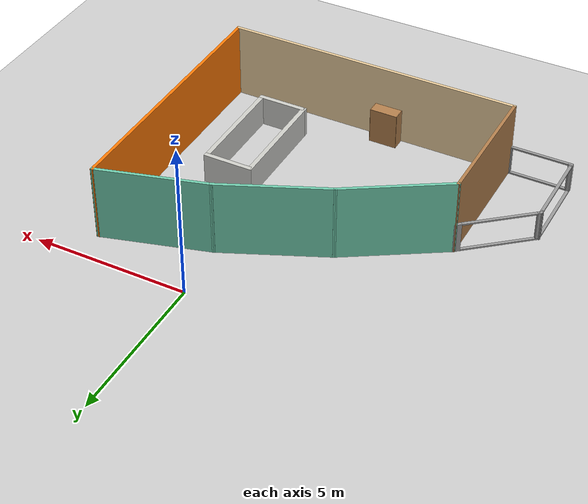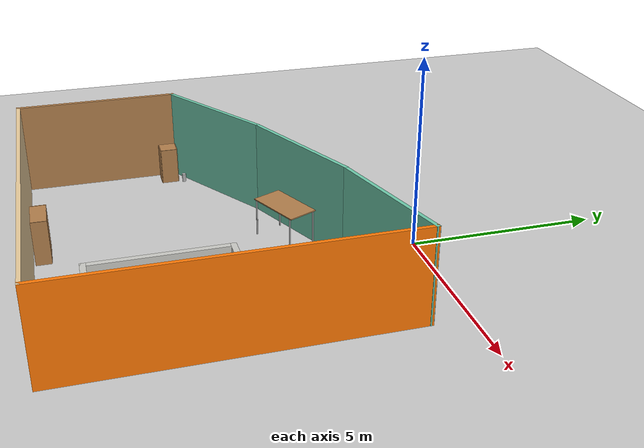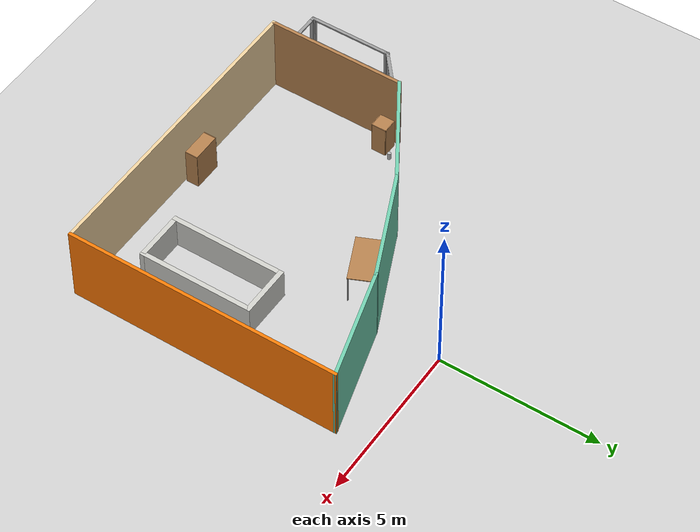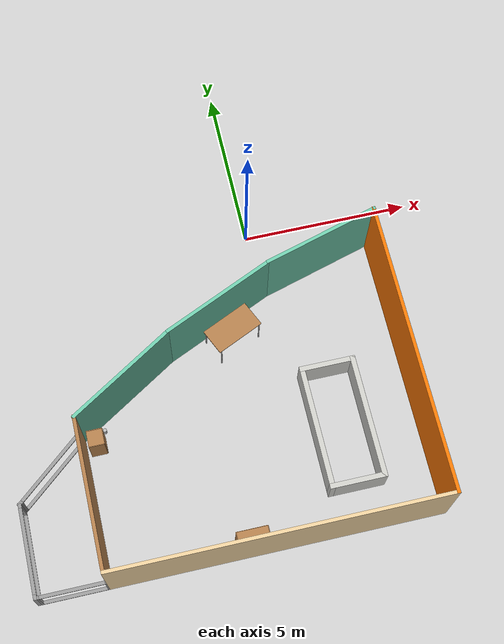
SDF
<sdf version="1.6">
 <world name="default">
  <light name="sun" type="directional">
   <pose>0 0 10 0 -0 0</pose>
   <diffuse>0.8 0.8 0.8 1</diffuse>
   <specular>0.2 0.2 0.2 1</specular>
   <attenuation>
    <range>1000</range>
    <constant>0.9</constant>
    <linear>0.01</linear>
    <quadratic>0.001</quadratic>
   </attenuation>
   <direction>-0.5 0.1 -0.9</direction>
  </light>
  <model name="ground_plane">
   <static>1</static>
   <link name="link">
    <collision name="collision">
     <geometry><plane><normal>0 0 1</normal><size>100 100</size></plane></geometry>
     <surface>
      <contact><collide_bitmask>65535</collide_bitmask></contact>
      <friction><ode><mu>100</mu><mu2>50</mu2></ode></friction>
     </surface>
    </collision>
    <visual name="visual">
     <cast_shadows>0</cast_shadows>
     <geometry><plane><normal>0 0 1</normal><size>100 100</size></plane></geometry>
     <material>
      <script><uri>file://media/materials/scripts/gazebo.material</uri><name>Gazebo/Grey</name></script>
     </material>
    </visual>
   </link>
  </model>
  <gravity>0 0 -9.8</gravity>
  <magnetic_field>6e-06 2.3e-05 -4.2e-05</magnetic_field>
  <atmosphere type="adiabatic"/>
  <physics name="default_physics" default="0" type="ode">
   <max_step_size>0.001</max_step_size>
   <real_time_factor>1</real_time_factor>
   <real_time_update_rate>1000</real_time_update_rate>
  </physics>
  <scene><ambient>0.4 0.4 0.4 1</ambient><background>0.7 0.7 0.7 1</background><shadows>1</shadows></scene>
  <spherical_coordinates>
   <surface_model>EARTH_WGS84</surface_model>
   <latitude_deg>0</latitude_deg>
   <longitude_deg>0</longitude_deg>
   <elevation>0</elevation>
   <heading_deg>0</heading_deg>
  </spherical_coordinates>
  <model name="enso_simplified2">
   <pose>-2.23432 -5.23909 0 0 -0 0</pose>
   <link name="Wall_11">
    <collision name="Wall_11_Collision">
     <geometry><box><size>3.65 0.15 1</size></box></geometry>
     <pose>0 0 0.5 0 -0 0</pose>
    </collision>
    <visual name="Wall_11_Visual">
     <pose>0 0 0.5 0 -0 0</pose>
     <geometry><box><size>3.65 0.15 1</size></box></geometry>
     <material>
      <script><uri>file://media/materials/scripts/gazebo.material</uri><name>Gazebo/CeilingTiled</name></script>
      <ambient>1 1 1 1</ambient>
     </material>
     <meta><layer>0</layer></meta>
    </visual>
    <pose>4.26431 -1.31091 0 0 0 -1.5708</pose>
   </link>
   <link name="Wall_12">
    <collision name="Wall_12_Collision">
     <geometry><box><size>1.65 0.15 1</size></box></geometry>
     <pose>0 0 0.5 0 -0 0</pose>
    </collision>
    <visual name="Wall_12_Visual">
     <pose>0 0 0.5 0 -0 0</pose>
     <geometry><box><size>1.65 0.15 1</size></box></geometry>
     <material>
      <script><uri>file://media/materials/scripts/gazebo.material</uri><name>Gazebo/CeilingTiled</name></script>
      <ambient>1 1 1 1</ambient>
     </material>
     <meta><layer>0</layer></meta>
    </visual>
    <pose>3.51431 -3.06091 0 0 -0 3.14159</pose>
   </link>
   <link name="Wall_13">
    <collision name="Wall_13_Collision">
     <geometry><box><size>3.65 0.15 1</size></box></geometry>
     <pose>0 0 0.5 0 -0 0</pose>
    </collision>
    <visual name="Wall_13_Visual">
     <pose>0 0 0.5 0 -0 0</pose>
     <geometry><box><size>3.65 0.15 1</size></box></geometry>
     <material>
      <script><uri>file://media/materials/scripts/gazebo.material</uri><name>Gazebo/CeilingTiled</name></script>
      <ambient>1 1 1 1</ambient>
     </material>
     <meta><layer>0</layer></meta>
    </visual>
    <pose>2.76431 -1.31091 0 0 -0 1.5708</pose>
   </link>
   <link name="Wall_14">
    <collision name="Wall_14_Collision">
     <geometry><box><size>1.65 0.15 1</size></box></geometry>
     <pose>0 0 0.5 0 -0 0</pose>
    </collision>
    <visual name="Wall_14_Visual">
     <pose>0 0 0.5 0 -0 0</pose>
     <geometry><box><size>1.65 0.15 1</size></box></geometry>
     <material>
      <script><uri>file://media/materials/scripts/gazebo.material</uri><name>Gazebo/CeilingTiled</name></script>
      <ambient>1 1 1 1</ambient>
     </material>
     <meta><layer>0</layer></meta>
    </visual>
    <pose>3.51431 0.439094 0 0 -0 0</pose>
   </link>
   <link name="Wall_16">
    <collision name="Wall_16_Collision">
     <geometry><box><size>4.37 0.1 2.5</size></box></geometry>
     <pose>0 0 1.25 0 -0 0</pose>
    </collision>
    <visual name="Wall_16_Visual">
     <pose>0 0 1.25 0 -0 0</pose>
     <geometry><box><size>4.37 0.1 2.5</size></box></geometry>
     <material>
      <script><uri>file://media/materials/scripts/gazebo.material</uri><name>Gazebo/Wood</name></script>
      <ambient>1 1 1 1</ambient>
     </material>
     <meta><layer>0</layer></meta>
    </visual>
    <pose>-3.76568 -2.12591 0 0 0 -1.5708</pose>
   </link>
   <link name="Wall_2">
    <collision name="Wall_2_Collision">
     <geometry><box><size>3.59445 0.1 2.5</size></box></geometry>
     <pose>0 0 1.25 0 -0 0</pose>
    </collision>
    <visual name="Wall_2_Visual">
     <pose>0 0 1.25 0 -0 0</pose>
     <geometry><box><size>3.59445 0.1 2.5</size></box></geometry>
     <material>
      <script><uri>file://media/materials/scripts/gazebo.material</uri><name>Gazebo/Grey</name></script>
      <ambient>0.435294 0.796078 0.67451 1</ambient>
     </material>
     <meta><layer>0</layer></meta>
    </visual>
    <pose>4.08432 3.76909 0 0 0 -2.86329</pose>
   </link>
   <link name="Wall_3">
    <collision name="Wall_3_Collision">
     <geometry><box><size>3.60498 0.1 2.5</size></box></geometry>
     <pose>0 0 1.25 0 -0 0</pose>
    </collision>
    <visual name="Wall_3_Visual">
     <pose>0 0 1.25 0 -0 0</pose>
     <geometry><box><size>3.60498 0.1 2.5</size></box></geometry>
     <material>
      <script><uri>file://media/materials/scripts/gazebo.material</uri><name>Gazebo/Grey</name></script>
      <ambient>0.435294 0.796078 0.67451 1</ambient>
     </material>
     <meta><layer>0</layer></meta>
    </visual>
    <pose>0.804315 2.57409 0 0 0 -2.72134</pose>
   </link>
   <link name="Wall_4">
    <collision name="Wall_4_Collision">
     <geometry><box><size>3.59906 0.1 2.5</size></box></geometry>
     <pose>0 0 1.25 0 -0 0</pose>
    </collision>
    <visual name="Wall_4_Visual">
     <pose>0 0 1.25 0 -0 0</pose>
     <geometry><box><size>3.59906 0.1 2.5</size></box></geometry>
     <material>
      <script><uri>file://media/materials/scripts/gazebo.material</uri><name>Gazebo/Grey</name></script>
      <ambient>0.435294 0.796078 0.67451 1</ambient>
     </material>
     <meta><layer>0</layer></meta>
    </visual>
    <pose>-2.28069 0.934094 0 0 0 -2.58451</pose>
   </link>
   <link name="Wall_5">
    <pose>-4.76068 -0.825906 0 0 0 -2.4434</pose>
    <visual name="Wall_5_Visual_0">
     <pose>-1.22988 0 0.5 0 -0 0</pose>
     <geometry><box><size>0.238128 0.1 1</size></box></geometry>
     <material>
      <script><uri>file://media/materials/scripts/gazebo.material</uri><name>Gazebo/Grey</name></script>
      <ambient>1 1 1 1</ambient>
     </material>
     <meta><layer>0</layer></meta>
    </visual>
    <collision name="Wall_5_Collision_0">
     <geometry><box><size>0.238128 0.1 1</size></box></geometry>
     <pose>-1.22988 0 0.5 0 -0 0</pose>
    </collision>
    <visual name="Wall_5_Visual_1">
     <pose>0.119064 0 0.025 0 -0 0</pose>
     <geometry><box><size>2.45976 0.1 0.05</size></box></geometry>
     <material>
      <script><uri>file://media/materials/scripts/gazebo.material</uri><name>Gazebo/Grey</name></script>
      <ambient>1 1 1 1</ambient>
     </material>
     <meta><layer>0</layer></meta>
    </visual>
    <collision name="Wall_5_Collision_1">
     <geometry><box><size>2.45976 0.1 0.05</size></box></geometry>
     <pose>0.119064 0 0.025 0 -0 0</pose>
    </collision>
    <visual name="Wall_5_Visual_2">
     <pose>1.26906 0 0.525 0 -0 0</pose>
     <geometry><box><size>0.159756 0.1 0.95</size></box></geometry>
     <material>
      <script><uri>file://media/materials/scripts/gazebo.material</uri><name>Gazebo/Grey</name></script>
      <ambient>1 1 1 1</ambient>
     </material>
     <meta><layer>0</layer></meta>
    </visual>
    <collision name="Wall_5_Collision_2">
     <geometry><box><size>0.159756 0.1 0.95</size></box></geometry>
     <pose>1.26906 0 0.525 0 -0 0</pose>
    </collision>
    <visual name="Wall_5_Visual_3">
     <pose>0.039186 0 0.975 0 -0 0</pose>
     <geometry><box><size>2.3 0.1 0.05</size></box></geometry>
     <material>
      <script><uri>file://media/materials/scripts/gazebo.material</uri><name>Gazebo/Grey</name></script>
      <ambient>1 1 1 1</ambient>
     </material>
     <meta><layer>0</layer></meta>
    </visual>
    <collision name="Wall_5_Collision_3">
     <geometry><box><size>2.3 0.1 0.05</size></box></geometry>
     <pose>0.039186 0 0.975 0 -0 0</pose>
    </collision>
   </link>
   <link name="Wall_6">
    <pose>-5.75568 -2.96091 0 0 0 -1.5708</pose>
    <visual name="Wall_6_Visual_0">
     <pose>-1.275 0 0.5 0 -0 0</pose>
     <geometry><box><size>0.15 0.1 1</size></box></geometry>
     <material>
      <script><uri>file://media/materials/scripts/gazebo.material</uri><name>Gazebo/Grey</name></script>
      <ambient>1 1 1 1</ambient>
     </material>
     <meta><layer>0</layer></meta>
    </visual>
    <collision name="Wall_6_Collision_0">
     <geometry><box><size>0.15 0.1 1</size></box></geometry>
     <pose>-1.275 0 0.5 0 -0 0</pose>
    </collision>
    <visual name="Wall_6_Visual_1">
     <pose>0.075 0 0.025 0 -0 0</pose>
     <geometry><box><size>2.55 0.1 0.05</size></box></geometry>
     <material>
      <script><uri>file://media/materials/scripts/gazebo.material</uri><name>Gazebo/Grey</name></script>
      <ambient>1 1 1 1</ambient>
     </material>
     <meta><layer>0</layer></meta>
    </visual>
    <collision name="Wall_6_Collision_1">
     <geometry><box><size>2.55 0.1 0.05</size></box></geometry>
     <pose>0.075 0 0.025 0 -0 0</pose>
    </collision>
    <visual name="Wall_6_Visual_2">
     <pose>1.275 0 0.525 0 -0 0</pose>
     <geometry><box><size>0.15 0.1 0.95</size></box></geometry>
     <material>
      <script><uri>file://media/materials/scripts/gazebo.material</uri><name>Gazebo/Grey</name></script>
      <ambient>1 1 1 1</ambient>
     </material>
     <meta><layer>0</layer></meta>
    </visual>
    <collision name="Wall_6_Collision_2">
     <geometry><box><size>0.15 0.1 0.95</size></box></geometry>
     <pose>1.275 0 0.525 0 -0 0</pose>
    </collision>
    <visual name="Wall_6_Visual_3">
     <pose>-0 0 0.975 0 -0 0</pose>
     <geometry><box><size>2.4 0.1 0.05</size></box></geometry>
     <material>
      <script><uri>file://media/materials/scripts/gazebo.material</uri><name>Gazebo/Grey</name></script>
      <ambient>1 1 1 1</ambient>
     </material>
     <meta><layer>0</layer></meta>
    </visual>
    <collision name="Wall_6_Collision_3">
     <geometry><box><size>2.4 0.1 0.05</size></box></geometry>
     <pose>-0 0 0.975 0 -0 0</pose>
    </collision>
   </link>
   <link name="Wall_7">
    <pose>-4.76068 -4.26091 0 0 -0 0</pose>
    <visual name="Wall_7_Visual_0">
     <pose>-0.97 0 0.5 0 -0 0</pose>
     <geometry><box><size>0.15 0.1 1</size></box></geometry>
     <material>
      <script><uri>file://media/materials/scripts/gazebo.material</uri><name>Gazebo/Grey</name></script>
      <ambient>1 1 1 1</ambient>
     </material>
     <meta><layer>0</layer></meta>
    </visual>
    <collision name="Wall_7_Collision_0">
     <geometry><box><size>0.15 0.1 1</size></box></geometry>
     <pose>-0.97 0 0.5 0 -0 0</pose>
    </collision>
    <visual name="Wall_7_Visual_1">
     <pose>0.075 0 0.025 0 -0 0</pose>
     <geometry><box><size>1.94 0.1 0.05</size></box></geometry>
     <material>
      <script><uri>file://media/materials/scripts/gazebo.material</uri><name>Gazebo/Grey</name></script>
      <ambient>1 1 1 1</ambient>
     </material>
     <meta><layer>0</layer></meta>
    </visual>
    <collision name="Wall_7_Collision_1">
     <geometry><box><size>1.94 0.1 0.05</size></box></geometry>
     <pose>0.075 0 0.025 0 -0 0</pose>
    </collision>
    <visual name="Wall_7_Visual_2">
     <pose>0.975 0 0.525 0 -0 0</pose>
     <geometry><box><size>0.14 0.1 0.95</size></box></geometry>
     <material>
      <script><uri>file://media/materials/scripts/gazebo.material</uri><name>Gazebo/Grey</name></script>
      <ambient>1 1 1 1</ambient>
     </material>
     <meta><layer>0</layer></meta>
    </visual>
    <collision name="Wall_7_Collision_2">
     <geometry><box><size>0.14 0.1 0.95</size></box></geometry>
     <pose>0.975 0 0.525 0 -0 0</pose>
    </collision>
    <visual name="Wall_7_Visual_3">
     <pose>0.005 0 0.975 0 -0 0</pose>
     <geometry><box><size>1.8 0.1 0.05</size></box></geometry>
     <material>
      <script><uri>file://media/materials/scripts/gazebo.material</uri><name>Gazebo/Grey</name></script>
      <ambient>1 1 1 1</ambient>
     </material>
     <meta><layer>0</layer></meta>
    </visual>
    <collision name="Wall_7_Collision_3">
     <geometry><box><size>1.8 0.1 0.05</size></box></geometry>
     <pose>0.005 0 0.975 0 -0 0</pose>
    </collision>
   </link>
   <link name="Wall_8">
    <collision name="Wall_8_Collision">
     <geometry><box><size>9.63 0.1 2.5</size></box></geometry>
     <pose>0 0 1.25 0 -0 0</pose>
    </collision>
    <visual name="Wall_8_Visual">
     <pose>0 0 1.25 0 -0 0</pose>
     <geometry><box><size>9.63 0.1 2.5</size></box></geometry>
     <material>
      <script><uri>file://media/materials/scripts/gazebo.material</uri><name>Gazebo/Grey</name></script>
      <ambient>0.921569 0.807843 0.615686 1</ambient>
     </material>
     <meta><layer>0</layer></meta>
    </visual>
    <pose>0.999315 -4.26091 0 0 -0 0</pose>
   </link>
   <link name="Wall_9">
    <collision name="Wall_9_Collision">
     <geometry><box><size>8.61 0.1 2.5</size></box></geometry>
     <pose>0 0 1.25 0 -0 0</pose>
    </collision>
    <visual name="Wall_9_Visual">
     <pose>0 0 1.25 0 -0 0</pose>
     <geometry><box><size>8.61 0.1 2.5</size></box></geometry>
     <material>
      <script><uri>file://media/materials/scripts/gazebo.material</uri><name>Gazebo/Grey</name></script>
      <ambient>0.996078 0.47451 0.0196078 1</ambient>
     </material>
     <meta><layer>0</layer></meta>
    </visual>
    <pose>5.76431 -0.005906 0 0 -0 1.5708</pose>
   </link>
   <static>1</static>
  </model>
  <model name="cabinet">
   <static>1</static>
   <link name="cabinet_bottom_plate">
    <inertial>
     <pose>0 0 -1 0 -0 0</pose>
     <inertia><ixx>2.05</ixx><ixy>0</ixy><ixz>0</ixz><iyy>2.05</iyy><iyz>0</iyz><izz>2.05</izz></inertia>
     <mass>25</mass>
    </inertial>
    <collision name="cabinet_bottom_plate_geom">
     <pose>0 0 0.01 0 -0 0</pose>
     <geometry><box><size>0.45 0.45 0.02</size></box></geometry>
    </collision>
    <visual name="cabinet_bottom_plate_geom_visual">
     <pose>0 0 0.01 0 -0 0</pose>
     <geometry><box><size>0.45 0.45 0.02</size></box></geometry>
     <material>
      <script><uri>file://media/materials/scripts/gazebo.material</uri><name>Gazebo/Wood</name></script>
     </material>
    </visual>
    <collision name="cabinet_bottom_plate_geom_cabinet_back_plate">
     <pose>0.235 0 0.51 0 -0 0</pose>
     <geometry><box><size>0.02 0.45 1.02</size></box></geometry>
    </collision>
    <visual name="cabinet_bottom_plate_geom_cabinet_back_plate_visual">
     <pose>0.235 0 0.51 0 -0 0</pose>
     <geometry><box><size>0.02 0.45 1.02</size></box></geometry>
     <material>
      <script><uri>file://media/materials/scripts/gazebo.material</uri><name>Gazebo/Wood</name></script>
     </material>
    </visual>
    <collision name="cabinet_bottom_plate_geom_cabinet_left_plate">
     <pose>0 0.235 0.51 0 -0 0</pose>
     <geometry><box><size>0.45 0.02 1.02</size></box></geometry>
    </collision>
    <visual name="cabinet_bottom_plate_geom_cabinet_left_plate_visual">
     <pose>0 0.235 0.51 0 -0 0</pose>
     <geometry><box><size>0.45 0.02 1.02</size></box></geometry>
     <material>
      <script><uri>file://media/materials/scripts/gazebo.material</uri><name>Gazebo/Wood</name></script>
     </material>
    </visual>
    <collision name="cabinet_bottom_plate_geom_cabinet_middle_plate">
     <pose>0 0 0.51 0 -0 0</pose>
     <geometry><box><size>0.45 0.45 0.02</size></box></geometry>
    </collision>
    <visual name="cabinet_bottom_plate_geom_cabinet_middle_plate_visual">
     <pose>0 0 0.51 0 -0 0</pose>
     <geometry><box><size>0.45 0.45 0.02</size></box></geometry>
     <material>
      <script><uri>file://media/materials/scripts/gazebo.material</uri><name>Gazebo/Wood</name></script>
     </material>
    </visual>
    <collision name="cabinet_bottom_plate_geom_cabinet_right_plate">
     <pose>0 -0.235 0.51 0 -0 0</pose>
     <geometry><box><size>0.45 0.02 1.02</size></box></geometry>
    </collision>
    <visual name="cabinet_bottom_plate_geom_cabinet_right_plate_visual">
     <pose>0 -0.235 0.51 0 -0 0</pose>
     <geometry><box><size>0.45 0.02 1.02</size></box></geometry>
     <material>
      <script><uri>file://media/materials/scripts/gazebo.material</uri><name>Gazebo/Wood</name></script>
     </material>
    </visual>
    <collision name="cabinet_bottom_plate_geom_cabinet_top_plate">
     <pose>0 0 1.01 0 -0 0</pose>
     <geometry><box><size>0.45 0.45 0.02</size></box></geometry>
    </collision>
    <visual name="cabinet_bottom_plate_geom_cabinet_top_plate_visual">
     <pose>0 0 1.01 0 -0 0</pose>
     <geometry><box><size>0.45 0.45 0.02</size></box></geometry>
     <material>
      <script><uri>file://media/materials/scripts/gazebo.material</uri><name>Gazebo/Wood</name></script>
     </material>
    </visual>
   </link>
   <pose>-5.61991 -5.49906 0 0 -0 0</pose>
  </model>
  <model name="bookshelf">
   <static>1</static>
   <link name="link">
    <inertial><mass>1</mass></inertial>
    <collision name="back">
     <pose>0 0.005 0.6 0 -0 0</pose>
     <geometry><box><size>0.9 0.01 1.2</size></box></geometry>
    </collision>
    <visual name="visual1">
     <pose>0 0.005 0.6 0 -0 0</pose>
     <geometry><box><size>0.9 0.01 1.2</size></box></geometry>
     <material>
      <script><uri>file://media/materials/scripts/gazebo.material</uri><name>Gazebo/Wood</name></script>
     </material>
    </visual>
    <collision name="left_side">
     <pose>0.45 -0.195 0.6 0 -0 0</pose>
     <geometry><box><size>0.02 0.4 1.2</size></box></geometry>
    </collision>
    <visual name="visual2">
     <pose>0.45 -0.195 0.6 0 -0 0</pose>
     <geometry><box><size>0.02 0.4 1.2</size></box></geometry>
     <material>
      <script><uri>file://media/materials/scripts/gazebo.material</uri><name>Gazebo/Wood</name></script>
     </material>
    </visual>
    <collision name="right_side">
     <pose>-0.45 -0.195 0.6 0 -0 0</pose>
     <geometry><box><size>0.02 0.4 1.2</size></box></geometry>
    </collision>
    <visual name="visual3">
     <pose>-0.45 -0.195 0.6 0 -0 0</pose>
     <geometry><box><size>0.02 0.4 1.2</size></box></geometry>
     <material>
      <script><uri>file://media/materials/scripts/gazebo.material</uri><name>Gazebo/Wood</name></script>
     </material>
    </visual>
    <collision name="bottom">
     <pose>0 -0.195 0.03 0 -0 0</pose>
     <geometry><box><size>0.88 0.4 0.06</size></box></geometry>
    </collision>
    <visual name="visual4">
     <pose>0 -0.195 0.03 0 -0 0</pose>
     <geometry><box><size>0.88 0.4 0.06</size></box></geometry>
     <material>
      <script><uri>file://media/materials/scripts/gazebo.material</uri><name>Gazebo/Wood</name></script>
     </material>
    </visual>
    <collision name="top">
     <pose>0 -0.195 1.19 0 -0 0</pose>
     <geometry><box><size>0.88 0.4 0.02</size></box></geometry>
    </collision>
    <visual name="visual5">
     <pose>0 -0.195 1.19 0 -0 0</pose>
     <geometry><box><size>0.88 0.4 0.02</size></box></geometry>
     <material>
      <script><uri>file://media/materials/scripts/gazebo.material</uri><name>Gazebo/Wood</name></script>
     </material>
    </visual>
    <collision name="low_shelf">
     <pose>0 -0.195 0.43 0 -0 0</pose>
     <geometry><box><size>0.88 0.4 0.02</size></box></geometry>
    </collision>
    <visual name="visual6">
     <pose>0 -0.195 0.43 0 -0 0</pose>
     <geometry><box><size>0.88 0.4 0.02</size></box></geometry>
     <material>
      <script><uri>file://media/materials/scripts/gazebo.material</uri><name>Gazebo/Wood</name></script>
     </material>
    </visual>
    <collision name="high_shelf">
     <pose>0 -0.195 0.8 0 -0 0</pose>
     <geometry><box><size>0.88 0.4 0.02</size></box></geometry>
    </collision>
    <visual name="visual7">
     <pose>0 -0.195 0.8 0 -0 0</pose>
     <geometry><box><size>0.88 0.4 0.02</size></box></geometry>
     <material>
      <script><uri>file://media/materials/scripts/gazebo.material</uri><name>Gazebo/Wood</name></script>
     </material>
    </visual>
   </link>
   <pose>-1.92655 -9.00989 0 0 -0 0</pose>
  </model>
  <model name="table">
   <static>1</static>
   <link name="link">
    <collision name="surface">
     <pose>0 0 1 0 -0 0</pose>
     <geometry><box><size>1.5 0.8 0.03</size></box></geometry>
     <surface><friction><ode><mu>0.6</mu><mu2>0.6</mu2></ode></friction></surface>
    </collision>
    <visual name="visual1">
     <pose>0 0 1 0 -0 0</pose>
     <geometry><box><size>1.5 0.8 0.03</size></box></geometry>
     <material>
      <script><uri>file://media/materials/scripts/gazebo.material</uri><name>Gazebo/Wood</name></script>
     </material>
    </visual>
    <collision name="front_left_leg">
     <pose>0.68 0.38 0.5 0 -0 0</pose>
     <geometry><cylinder><radius>0.02</radius><length>1</length></cylinder></geometry>
    </collision>
    <visual name="front_left_leg">
     <pose>0.68 0.38 0.5 0 -0 0</pose>
     <geometry><cylinder><radius>0.02</radius><length>1</length></cylinder></geometry>
     <material>
      <script><uri>file://media/materials/scripts/gazebo.material</uri><name>Gazebo/Grey</name></script>
     </material>
    </visual>
    <collision name="front_right_leg">
     <pose>0.68 -0.38 0.5 0 -0 0</pose>
     <geometry><cylinder><radius>0.02</radius><length>1</length></cylinder></geometry>
    </collision>
    <visual name="front_right_leg">
     <pose>0.68 -0.38 0.5 0 -0 0</pose>
     <geometry><cylinder><radius>0.02</radius><length>1</length></cylinder></geometry>
     <material>
      <script><uri>file://media/materials/scripts/gazebo.material</uri><name>Gazebo/Grey</name></script>
     </material>
    </visual>
    <collision name="back_right_leg">
     <pose>-0.68 -0.38 0.5 0 -0 0</pose>
     <geometry><cylinder><radius>0.02</radius><length>1</length></cylinder></geometry>
    </collision>
    <visual name="back_right_leg">
     <pose>-0.68 -0.38 0.5 0 -0 0</pose>
     <geometry><cylinder><radius>0.02</radius><length>1</length></cylinder></geometry>
     <material>
      <script><uri>file://media/materials/scripts/gazebo.material</uri><name>Gazebo/Grey</name></script>
     </material>
    </visual>
    <collision name="back_left_leg">
     <pose>-0.68 0.38 0.5 0 -0 0</pose>
     <geometry><cylinder><radius>0.02</radius><length>1</length></cylinder></geometry>
    </collision>
    <visual name="back_left_leg">
     <pose>-0.68 0.38 0.5 0 -0 0</pose>
     <geometry><cylinder><radius>0.02</radius><length>1</length></cylinder></geometry>
     <material>
      <script><uri>file://media/materials/scripts/gazebo.material</uri><name>Gazebo/Grey</name></script>
     </material>
    </visual>
   </link>
   <pose>-1.13403 -3.13505 0 0 -0 0.423592</pose>
  </model>
  <model name="beer">
   <link name="link">
    <pose>0 0 0.115 0 -0 0</pose>
    <inertial>
     <mass>0.39</mass>
     <inertia><ixx>0.00058</ixx><ixy>0</ixy><ixz>0</ixz><iyy>0.00058</iyy><iyz>0</iyz><izz>0.00019</izz></inertia>
    </inertial>
    <collision name="collision">
     <geometry><cylinder><radius>0.055</radius><length>0.23</length></cylinder></geometry>
    </collision>
    <visual name="visual">
     <geometry><cylinder><radius>0.055</radius><length>0.23</length></cylinder></geometry>
     <material>
      <script>
       <uri>model://beer/materials/scripts</uri>
       <uri>model://beer/materials/textures</uri>
       <name>Beer/Diffuse</name>
      </script>
     </material>
    </visual>
   </link>
   <pose>-5.34888 -5.10561 -7e-06 -1e-06 -0 -1.2e-05</pose>
  </model>
 </world>
</sdf>
